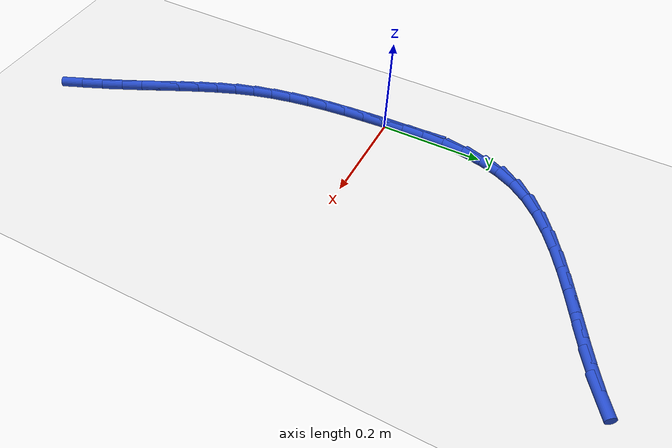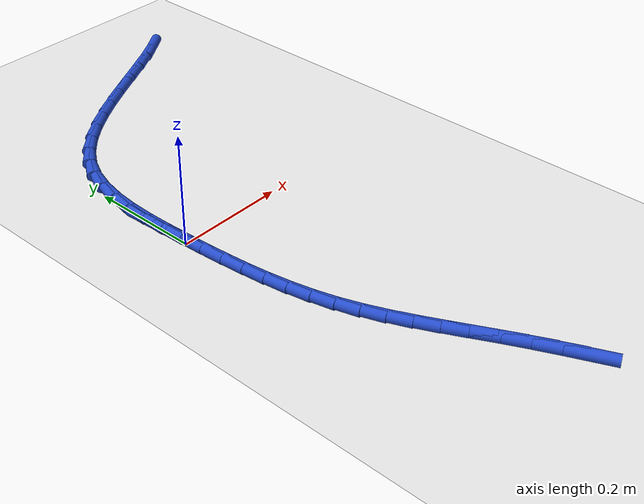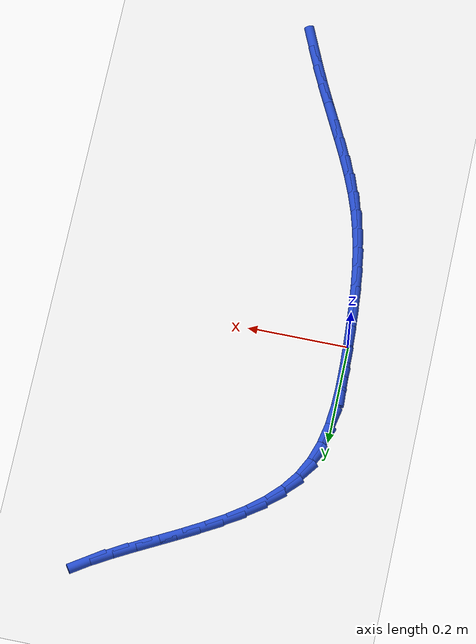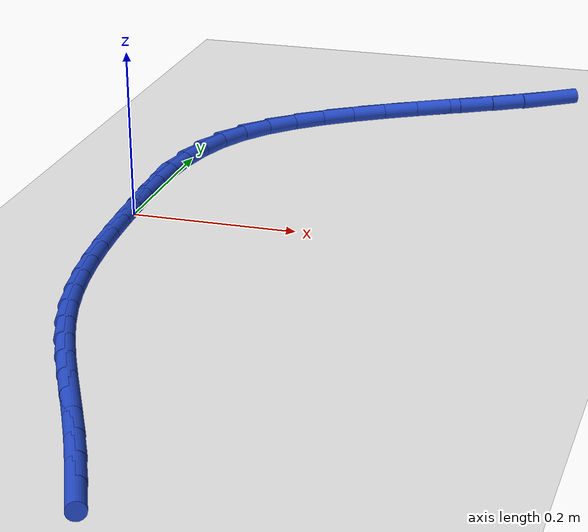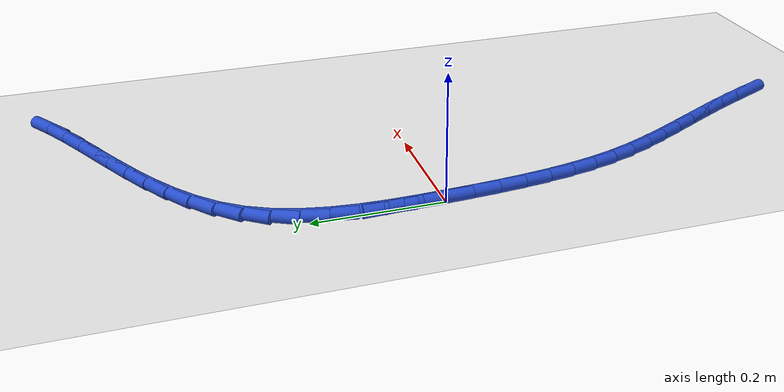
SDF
<sdf version="1.6">
 <world name="default">
  <model name="ground_plane">
   <static>1</static>
   <link name="link">
    <collision name="collision">
     <geometry><plane><normal>0 0 1</normal><size>100 100</size></plane></geometry>
     <surface><friction><ode><mu>100</mu><mu2>50</mu2></ode></friction></surface>
    </collision>
    <visual name="visual">
     <cast_shadows>0</cast_shadows>
     <geometry><plane><normal>0 0 1</normal><size>100 100</size></plane></geometry>
     <material>
      <script><uri>file://media/materials/scripts/gazebo.material</uri><name>Gazebo/WhiteGlow</name></script>
     </material>
    </visual>
   </link>
  </model>
  <model name="line">
   <link name="link_0">
    <pose>6.288372600415926e-18 2.7755575615628914e-17 0.01 0 1.57 -1.526758649857964</pose>
    <collision name="collision">
     <geometry><cylinder><radius>0.01</radius><length>0.08</length></cylinder></geometry>
    </collision>
    <visual name="visual">
     <material>
      <script><name>Gazebo/Blue</name><uri>file://media/materials/scripts/gazebo.material</uri></script>
     </material>
     <geometry><cylinder><radius>0.01</radius><length>0.08</length></cylinder></geometry>
    </visual>
   </link>
   <link name="link_1">
    <pose>-0.0018820388010166997 0.042709383220019805 0.01 0 1.57 -1.5539022195471113</pose>
    <collision name="collision">
     <geometry><cylinder><radius>0.01</radius><length>0.08</length></cylinder></geometry>
    </collision>
    <visual name="visual">
     <material>
      <script><name>Gazebo/Blue</name><uri>file://media/materials/scripts/gazebo.material</uri></script>
     </material>
     <geometry><cylinder><radius>0.01</radius><length>0.08</length></cylinder></geometry>
    </visual>
   </link>
   <link name="link_2">
    <pose>-0.002604133918922305 0.08544774210924796 0.01 0 1.57 1.540635846049451</pose>
    <collision name="collision">
     <geometry><cylinder><radius>0.01</radius><length>0.08</length></cylinder></geometry>
    </collision>
    <visual name="visual">
     <material>
      <script><name>Gazebo/Blue</name><uri>file://media/materials/scripts/gazebo.material</uri></script>
     </material>
     <geometry><cylinder><radius>0.01</radius><length>0.08</length></cylinder></geometry>
    </visual>
   </link>
   <link name="link_3">
    <pose>-0.0013292770291949206 0.1277040415770393 0.01 0 1.57 1.4715476780531809</pose>
    <collision name="collision">
     <geometry><cylinder><radius>0.01</radius><length>0.08</length></cylinder></geometry>
    </collision>
    <visual name="visual">
     <material>
      <script><name>Gazebo/Blue</name><uri>file://media/materials/scripts/gazebo.material</uri></script>
     </material>
     <geometry><cylinder><radius>0.01</radius><length>0.08</length></cylinder></geometry>
    </visual>
   </link>
   <link name="link_4">
    <pose>0.002779540192687339 0.16896724653274864 0.01 0 1.57 1.377564583050913</pose>
    <collision name="collision">
     <geometry><cylinder><radius>0.01</radius><length>0.08</length></cylinder></geometry>
    </collision>
    <visual name="visual">
     <material>
      <script><name>Gazebo/Blue</name><uri>file://media/materials/scripts/gazebo.material</uri></script>
     </material>
     <geometry><cylinder><radius>0.01</radius><length>0.08</length></cylinder></geometry>
    </visual>
   </link>
   <link name="link_5">
    <pose>0.010559326071246366 0.20872632188573073 0.01 0 1.57 1.2560614764792688</pose>
    <collision name="collision">
     <geometry><cylinder><radius>0.01</radius><length>0.08</length></cylinder></geometry>
    </collision>
    <visual name="visual">
     <material>
      <script><name>Gazebo/Blue</name><uri>file://media/materials/scripts/gazebo.material</uri></script>
     </material>
     <geometry><cylinder><radius>0.01</radius><length>0.08</length></cylinder></geometry>
    </visual>
   </link>
   <link name="link_6">
    <pose>0.022847088931004032 0.24647023254534045 0.01 0 1.57 1.1066061216356813</pose>
    <collision name="collision">
     <geometry><cylinder><radius>0.01</radius><length>0.08</length></cylinder></geometry>
    </collision>
    <visual name="visual">
     <material>
      <script><name>Gazebo/Blue</name><uri>file://media/materials/scripts/gazebo.material</uri></script>
     </material>
     <geometry><cylinder><radius>0.01</radius><length>0.08</length></cylinder></geometry>
    </visual>
   </link>
   <link name="link_7">
    <pose>0.040479837096482243 0.28168794342093245 0.01 0 1.57 0.9417796551673666</pose>
    <collision name="collision">
     <geometry><cylinder><radius>0.01</radius><length>0.08</length></cylinder></geometry>
    </collision>
    <visual name="visual">
     <material>
      <script><name>Gazebo/Blue</name><uri>file://media/materials/scripts/gazebo.material</uri></script>
     </material>
     <geometry><cylinder><radius>0.01</radius><length>0.08</length></cylinder></geometry>
    </visual>
   </link>
   <link name="link_8">
    <pose>0.06400437496463998 0.31401920119887294 0.01 0 1.57 0.80065426163367</pose>
    <collision name="collision">
     <geometry><cylinder><radius>0.01</radius><length>0.08</length></cylinder></geometry>
    </collision>
    <visual name="visual">
     <material>
      <script><name>Gazebo/Blue</name><uri>file://media/materials/scripts/gazebo.material</uri></script>
     </material>
     <geometry><cylinder><radius>0.01</radius><length>0.08</length></cylinder></geometry>
    </visual>
   </link>
   <link name="link_9">
    <pose>0.09280208311702653 0.34370927391506456 0.01 0 1.57 0.6914011478016168</pose>
    <collision name="collision">
     <geometry><cylinder><radius>0.01</radius><length>0.08</length></cylinder></geometry>
    </collision>
    <visual name="visual">
     <material>
      <script><name>Gazebo/Blue</name><uri>file://media/materials/scripts/gazebo.material</uri></script>
     </material>
     <geometry><cylinder><radius>0.01</radius><length>0.08</length></cylinder></geometry>
    </visual>
   </link>
   <link name="link_10">
    <pose>0.12596182958552965 0.3711554108773606 0.01 0 1.57 0.6102123697754932</pose>
    <collision name="collision">
     <geometry><cylinder><radius>0.01</radius><length>0.08</length></cylinder></geometry>
    </collision>
    <visual name="visual">
     <material>
      <script><name>Gazebo/Blue</name><uri>file://media/materials/scripts/gazebo.material</uri></script>
     </material>
     <geometry><cylinder><radius>0.01</radius><length>0.08</length></cylinder></geometry>
    </visual>
   </link>
   <link name="link_11">
    <pose>0.16257248240136604 0.39675486139396315 0.01 0 1.57 0.5527185018217031</pose>
    <collision name="collision">
     <geometry><cylinder><radius>0.01</radius><length>0.08</length></cylinder></geometry>
    </collision>
    <visual name="visual">
     <material>
      <script><name>Gazebo/Blue</name><uri>file://media/materials/scripts/gazebo.material</uri></script>
     </material>
     <geometry><cylinder><radius>0.01</radius><length>0.08</length></cylinder></geometry>
    </visual>
   </link>
   <link name="link_12">
    <pose>0.2017229095957525 0.42090487477307403 0.01 0 1.57 0.5153575408454867</pose>
    <collision name="collision">
     <geometry><cylinder><radius>0.01</radius><length>0.08</length></cylinder></geometry>
    </collision>
    <visual name="visual">
     <material>
      <script><name>Gazebo/Blue</name><uri>file://media/materials/scripts/gazebo.material</uri></script>
     </material>
     <geometry><cylinder><radius>0.01</radius><length>0.08</length></cylinder></geometry>
    </visual>
   </link>
   <link name="link_13">
    <pose>0.24250197919990554 0.44400270032289524 0.01 0 1.57 0.4957810918882343</pose>
    <collision name="collision">
     <geometry><cylinder><radius>0.01</radius><length>0.08</length></cylinder></geometry>
    </collision>
    <visual name="visual">
     <material>
      <script><name>Gazebo/Blue</name><uri>file://media/materials/scripts/gazebo.material</uri></script>
     </material>
     <geometry><cylinder><radius>0.01</radius><length>0.08</length></cylinder></geometry>
    </visual>
   </link>
   <link name="link_14">
    <pose>0.283998559245042 0.4664455873516287 0.01 0 1.57 0.4929111726390121</pose>
    <collision name="collision">
     <geometry><cylinder><radius>0.01</radius><length>0.08</length></cylinder></geometry>
    </collision>
    <visual name="visual">
     <material>
      <script><name>Gazebo/Blue</name><uri>file://media/materials/scripts/gazebo.material</uri></script>
     </material>
     <geometry><cylinder><radius>0.01</radius><length>0.08</length></cylinder></geometry>
    </visual>
   </link>
   <link name="link_15">
    <pose>0.3253015177623788 0.48863078516747666 0.01 0 1.57 0.5069544342552839</pose>
    <collision name="collision">
     <geometry><cylinder><radius>0.01</radius><length>0.08</length></cylinder></geometry>
    </collision>
    <visual name="visual">
     <material>
      <script><name>Gazebo/Blue</name><uri>file://media/materials/scripts/gazebo.material</uri></script>
     </material>
     <geometry><cylinder><radius>0.01</radius><length>0.08</length></cylinder></geometry>
    </visual>
   </link>
   <link name="link_16">
    <pose>0.3654997227831325 0.5109555430786408 0.01 0 1.57 0.5394980149726251</pose>
    <collision name="collision">
     <geometry><cylinder><radius>0.01</radius><length>0.08</length></cylinder></geometry>
    </collision>
    <visual name="visual">
     <material>
      <script><name>Gazebo/Blue</name><uri>file://media/materials/scripts/gazebo.material</uri></script>
     </material>
     <geometry><cylinder><radius>0.01</radius><length>0.08</length></cylinder></geometry>
    </visual>
   </link>
   <link name="link_17">
    <pose>0.40368204233851956 0.533817110393323 0.01 0 1.57 0.5937164828958916</pose>
    <collision name="collision">
     <geometry><cylinder><radius>0.01</radius><length>0.08</length></cylinder></geometry>
    </collision>
    <visual name="visual">
     <material>
      <script><name>Gazebo/Blue</name><uri>file://media/materials/scripts/gazebo.material</uri></script>
     </material>
     <geometry><cylinder><radius>0.01</radius><length>0.08</length></cylinder></geometry>
    </visual>
   </link>
   <link name="link_204">
    <pose>0.19454180857249226 -0.6203364545453761 0.01 0 1.57 -1.157176790256025</pose>
    <collision name="collision">
     <geometry><cylinder><radius>0.01</radius><length>0.08</length></cylinder></geometry>
    </collision>
    <visual name="visual">
     <material>
      <script><name>Gazebo/Blue</name><uri>file://media/materials/scripts/gazebo.material</uri></script>
     </material>
     <geometry><cylinder><radius>0.01</radius><length>0.08</length></cylinder></geometry>
    </visual>
   </link>
   <link name="link_205">
    <pose>0.1768334726736688 -0.5799931638862653 0.01 0 1.57 -1.1399448500754377</pose>
    <collision name="collision">
     <geometry><cylinder><radius>0.01</radius><length>0.08</length></cylinder></geometry>
    </collision>
    <visual name="visual">
     <material>
      <script><name>Gazebo/Blue</name><uri>file://media/materials/scripts/gazebo.material</uri></script>
     </material>
     <geometry><cylinder><radius>0.01</radius><length>0.08</length></cylinder></geometry>
    </visual>
   </link>
   <link name="link_206">
    <pose>0.15869787478363864 -0.5405381022053204 0.01 0 1.57 -1.1185259431682235</pose>
    <collision name="collision">
     <geometry><cylinder><radius>0.01</radius><length>0.08</length></cylinder></geometry>
    </collision>
    <visual name="visual">
     <material>
      <script><name>Gazebo/Blue</name><uri>file://media/materials/scripts/gazebo.material</uri></script>
     </material>
     <geometry><cylinder><radius>0.01</radius><length>0.08</length></cylinder></geometry>
    </visual>
   </link>
   <link name="link_207">
    <pose>0.14008472078183412 -0.5022282620306213 0.01 0 1.57 -1.105510000090709</pose>
    <collision name="collision">
     <geometry><cylinder><radius>0.01</radius><length>0.08</length></cylinder></geometry>
    </collision>
    <visual name="visual">
     <material>
      <script><name>Gazebo/Blue</name><uri>file://media/materials/scripts/gazebo.material</uri></script>
     </material>
     <geometry><cylinder><radius>0.01</radius><length>0.08</length></cylinder></geometry>
    </visual>
   </link>
   <link name="link_208">
    <pose>0.12132915802904579 -0.46487031000955303 0.01 0 1.57 -1.1047179915275387</pose>
    <collision name="collision">
     <geometry><cylinder><radius>0.01</radius><length>0.08</length></cylinder></geometry>
    </collision>
    <visual name="visual">
     <material>
      <script><name>Gazebo/Blue</name><uri>file://media/materials/scripts/gazebo.material</uri></script>
     </material>
     <geometry><cylinder><radius>0.01</radius><length>0.08</length></cylinder></geometry>
    </visual>
   </link>
   <link name="link_209">
    <pose>0.10286193373959797 -0.42815921985990846 0.01 0 1.57 -1.1167960003035393</pose>
    <collision name="collision">
     <geometry><cylinder><radius>0.01</radius><length>0.08</length></cylinder></geometry>
    </collision>
    <visual name="visual">
     <material>
      <script><name>Gazebo/Blue</name><uri>file://media/materials/scripts/gazebo.material</uri></script>
     </material>
     <geometry><cylinder><radius>0.01</radius><length>0.08</length></cylinder></geometry>
    </visual>
   </link>
   <link name="link_210">
    <pose>0.08511379512781546 -0.39178996529948135 0.01 0 1.57 -1.1422644753623086</pose>
    <collision name="collision">
     <geometry><cylinder><radius>0.01</radius><length>0.08</length></cylinder></geometry>
    </collision>
    <visual name="visual">
     <material>
      <script><name>Gazebo/Blue</name><uri>file://media/materials/scripts/gazebo.material</uri></script>
     </material>
     <geometry><cylinder><radius>0.01</radius><length>0.08</length></cylinder></geometry>
    </visual>
   </link>
   <link name="link_211">
    <pose>0.06851548940802307 -0.3554575200460653 0.01 0 1.57 -1.1814312132779274</pose>
    <collision name="collision">
     <geometry><cylinder><radius>0.01</radius><length>0.08</length></cylinder></geometry>
    </collision>
    <visual name="visual">
     <material>
      <script><name>Gazebo/Blue</name><uri>file://media/materials/scripts/gazebo.material</uri></script>
     </material>
     <geometry><cylinder><radius>0.01</radius><length>0.08</length></cylinder></geometry>
    </visual>
   </link>
   <link name="link_212">
    <pose>0.053497763794545315 -0.31885685781745343 0.01 0 1.57 -1.2342286015797628</pose>
    <collision name="collision">
     <geometry><cylinder><radius>0.01</radius><length>0.08</length></cylinder></geometry>
    </collision>
    <visual name="visual">
     <material>
      <script><name>Gazebo/Blue</name><uri>file://media/materials/scripts/gazebo.material</uri></script>
     </material>
     <geometry><cylinder><radius>0.01</radius><length>0.08</length></cylinder></geometry>
    </visual>
   </link>
   <link name="link_213">
    <pose>0.04049136550142618 -0.28168295233157675 0.01 0 1.57 -1.2965926783581148</pose>
    <collision name="collision">
     <geometry><cylinder><radius>0.01</radius><length>0.08</length></cylinder></geometry>
    </collision>
    <visual name="visual">
     <material>
      <script><name>Gazebo/Blue</name><uri>file://media/materials/scripts/gazebo.material</uri></script>
     </material>
     <geometry><cylinder><radius>0.01</radius><length>0.08</length></cylinder></geometry>
    </visual>
   </link>
   <link name="link_214">
    <pose>0.02980433303313481 -0.24368989127512922 0.01 0 1.57 -1.354060571139753</pose>
    <collision name="collision">
     <geometry><cylinder><radius>0.01</radius><length>0.08</length></cylinder></geometry>
    </collision>
    <visual name="visual">
     <material>
      <script><name>Gazebo/Blue</name><uri>file://media/materials/scripts/gazebo.material</uri></script>
     </material>
     <geometry><cylinder><radius>0.01</radius><length>0.08</length></cylinder></geometry>
    </visual>
   </link>
   <link name="link_215">
    <pose>0.02125581081878913 -0.2048672832623764 0.01 0 1.57 -1.4028983777823916</pose>
    <collision name="collision">
     <geometry><cylinder><radius>0.01</radius><length>0.08</length></cylinder></geometry>
    </collision>
    <visual name="visual">
     <material>
      <script><name>Gazebo/Blue</name><uri>file://media/materials/scripts/gazebo.material</uri></script>
     </material>
     <geometry><cylinder><radius>0.01</radius><length>0.08</length></cylinder></geometry>
    </visual>
   </link>
   <link name="link_216">
    <pose>0.014543203042496265 -0.1652633843260594 0.01 0 1.57 -1.4430943978605004</pose>
    <collision name="collision">
     <geometry><cylinder><radius>0.01</radius><length>0.08</length></cylinder></geometry>
    </collision>
    <visual name="visual">
     <material>
      <script><name>Gazebo/Blue</name><uri>file://media/materials/scripts/gazebo.material</uri></script>
     </material>
     <geometry><cylinder><radius>0.01</radius><length>0.08</length></cylinder></geometry>
    </visual>
   </link>
   <link name="link_217">
    <pose>0.009363913888363783 -0.12492645049892205 0.01 0 1.57 -1.4748364367363442</pose>
    <collision name="collision">
     <geometry><cylinder><radius>0.01</radius><length>0.08</length></cylinder></geometry>
    </collision>
    <visual name="visual">
     <material>
      <script><name>Gazebo/Blue</name><uri>file://media/materials/scripts/gazebo.material</uri></script>
     </material>
     <geometry><cylinder><radius>0.01</radius><length>0.08</length></cylinder></geometry>
    </visual>
   </link>
   <link name="link_218">
    <pose>0.005415347540498754 -0.08390473781370526 0.01 0 1.57 -1.4984177651537094</pose>
    <collision name="collision">
     <geometry><cylinder><radius>0.01</radius><length>0.08</length></cylinder></geometry>
    </collision>
    <visual name="visual">
     <material>
      <script><name>Gazebo/Blue</name><uri>file://media/materials/scripts/gazebo.material</uri></script>
     </material>
     <geometry><cylinder><radius>0.01</radius><length>0.08</length></cylinder></geometry>
    </visual>
   </link>
   <link name="link_219">
    <pose>0.0023949081830084338 -0.04224650230315105 0.01 0 1.57 -1.5141680253670586</pose>
    <collision name="collision">
     <geometry><cylinder><radius>0.01</radius><length>0.08</length></cylinder></geometry>
    </collision>
    <visual name="visual">
     <material>
      <script><name>Gazebo/Blue</name><uri>file://media/materials/scripts/gazebo.material</uri></script>
     </material>
     <geometry><cylinder><radius>0.01</radius><length>0.08</length></cylinder></geometry>
    </visual>
   </link>
   <link name="link_220">
    <pose>2.3201926491189795e-17 -2.498001805406602e-16 0.01 0 1.57 -1.5224082877516918</pose>
    <collision name="collision">
     <geometry><cylinder><radius>0.01</radius><length>0.08</length></cylinder></geometry>
    </collision>
    <visual name="visual">
     <material>
      <script><name>Gazebo/Blue</name><uri>file://media/materials/scripts/gazebo.material</uri></script>
     </material>
     <geometry><cylinder><radius>0.01</radius><length>0.08</length></cylinder></geometry>
    </visual>
   </link>
   <link name="link_221">
    <pose>-0.0020719728244190626 0.04278651306300206 0.01 0 1.57 -1.523426166630245</pose>
    <collision name="collision">
     <geometry><cylinder><radius>0.01</radius><length>0.08</length></cylinder></geometry>
    </collision>
    <visual name="visual">
     <material>
      <script><name>Gazebo/Blue</name><uri>file://media/materials/scripts/gazebo.material</uri></script>
     </material>
     <geometry><cylinder><radius>0.01</radius><length>0.08</length></cylinder></geometry>
    </visual>
   </link>
   <link name="link_222">
    <pose>-0.004123606106141783 0.08606478085311817 0.01 0 1.57 -1.522920122745576</pose>
    <collision name="collision">
     <geometry><cylinder><radius>0.01</radius><length>0.08</length></cylinder></geometry>
    </collision>
    <visual name="visual">
     <material>
      <script><name>Gazebo/Blue</name><uri>file://media/materials/scripts/gazebo.material</uri></script>
     </material>
     <geometry><cylinder><radius>0.01</radius><length>0.08</length></cylinder></geometry>
    </visual>
   </link>
  </model>
 </world>
</sdf>
